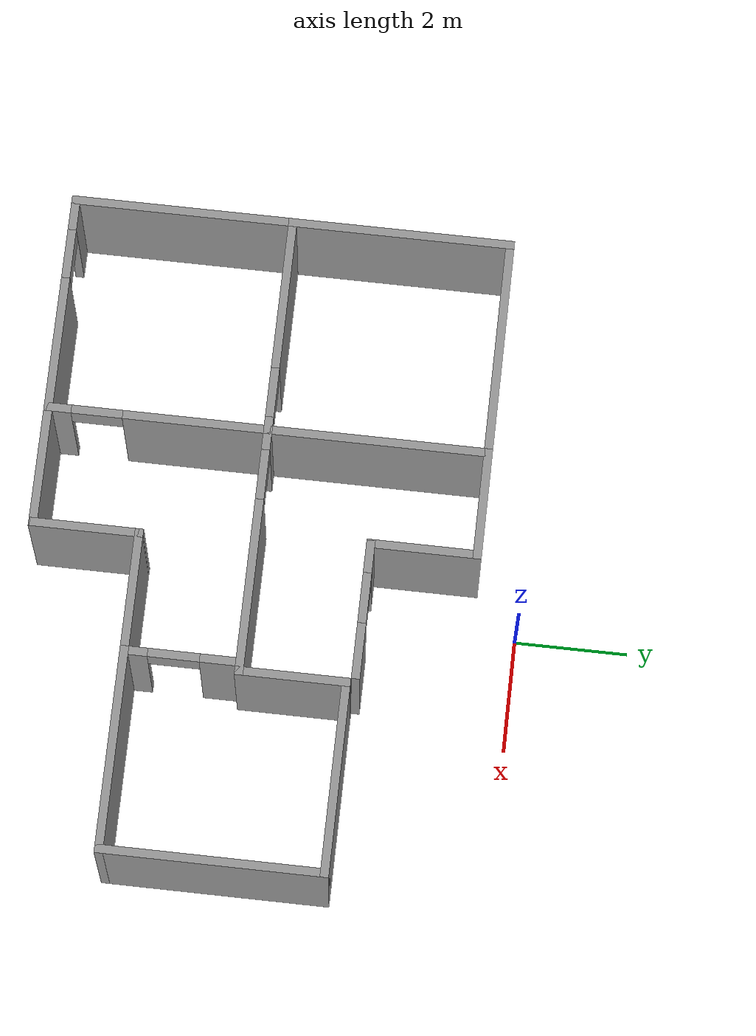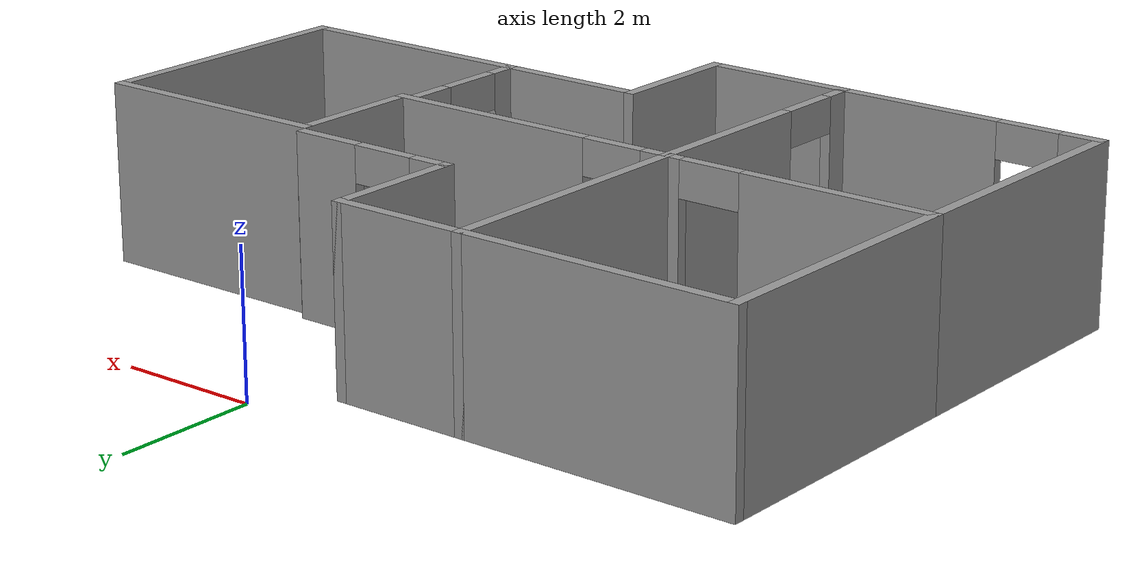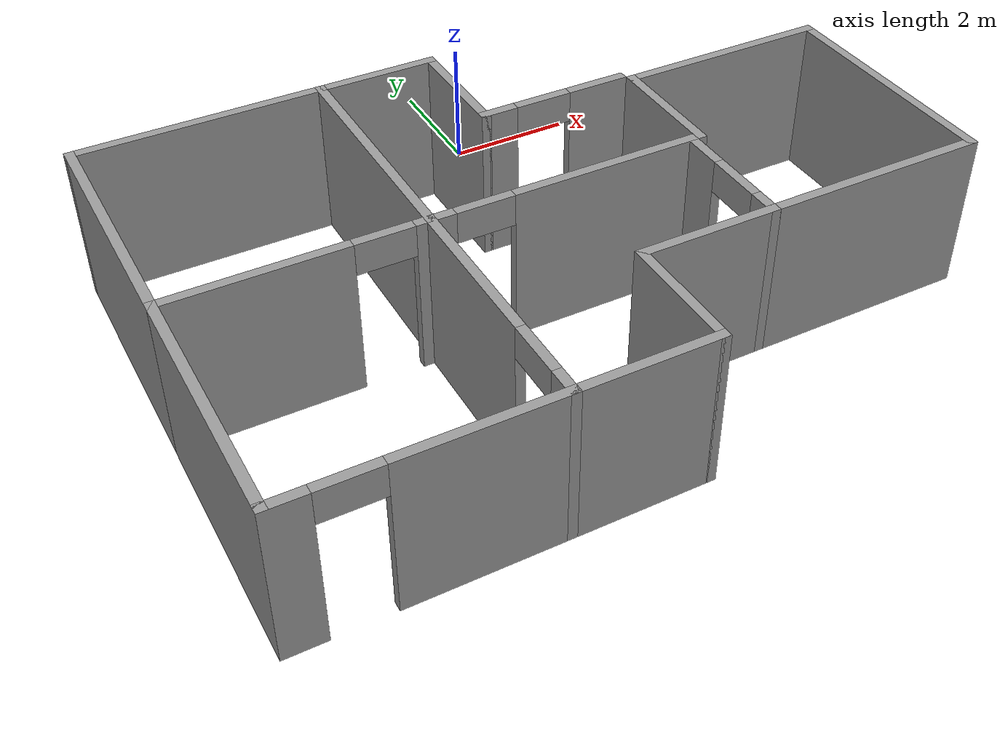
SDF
<?xml version='1.0'?>
<sdf version='1.7'>
  <model name='FirstBuilding_Lab3'>
    <pose>-0.755 -4.2975 0 0 -0 0</pose>
    <link name='Wall_1'>
      <collision name='Wall_1_Collision'>
        <geometry>
          <box>
            <size>4 0.15 2.5</size>
          </box>
        </geometry>
        <pose>0 0 1.25 0 -0 0</pose>
      </collision>
      <visual name='Wall_1_Visual'>
        <pose>0 0 1.25 0 -0 0</pose>
        <geometry>
          <box>
            <size>4 0.15 2.5</size>
          </box>
        </geometry>
        <material>
          <script>
            <uri>file://media/materials/scripts/gazebo.material</uri>
            <name>Gazebo/Grey</name>
          </script>
          <ambient>1 1 1 1</ambient>
        </material>
        <meta>
          <layer>0</layer>
        </meta>
      </visual>
      <pose>-5.775 1.5525 0 0 -0 -1.5708</pose>
    </link>
    <link name='Wall_2'>
      <pose>-3.85 -0.3725 0 0 -0 0</pose>
      <visual name='Wall_2_Visual_0'>
        <pose>-0.606687 0 1.25 0 -0 0</pose>
        <geometry>
          <box>
            <size>2.78662 0.15 2.5</size>
          </box>
        </geometry>
        <material>
          <script>
            <uri>file://media/materials/scripts/gazebo.material</uri>
            <name>Gazebo/Grey</name>
          </script>
          <ambient>1 1 1 1</ambient>
        </material>
        <meta>
          <layer>0</layer>
        </meta>
      </visual>
      <collision name='Wall_2_Collision_0'>
        <geometry>
          <box>
            <size>2.78662 0.15 2.5</size>
          </box>
        </geometry>
        <pose>-0.606687 0 1.25 0 -0 0</pose>
      </collision>
      <visual name='Wall_2_Visual_1'>
        <pose>1.84331 0 1.25 0 -0 0</pose>
        <geometry>
          <box>
            <size>0.313375 0.15 2.5</size>
          </box>
        </geometry>
        <material>
          <script>
            <uri>file://media/materials/scripts/gazebo.material</uri>
            <name>Gazebo/Grey</name>
          </script>
          <ambient>1 1 1 1</ambient>
        </material>
        <meta>
          <layer>0</layer>
        </meta>
      </visual>
      <collision name='Wall_2_Collision_1'>
        <geometry>
          <box>
            <size>0.313375 0.15 2.5</size>
          </box>
        </geometry>
        <pose>1.84331 0 1.25 0 -0 0</pose>
      </collision>
      <visual name='Wall_2_Visual_2'>
        <pose>1.23663 0 2.25 0 -0 0</pose>
        <geometry>
          <box>
            <size>0.9 0.15 0.5</size>
          </box>
        </geometry>
        <material>
          <script>
            <uri>file://media/materials/scripts/gazebo.material</uri>
            <name>Gazebo/Grey</name>
          </script>
          <ambient>1 1 1 1</ambient>
        </material>
        <meta>
          <layer>0</layer>
        </meta>
      </visual>
      <collision name='Wall_2_Collision_2'>
        <geometry>
          <box>
            <size>0.9 0.15 0.5</size>
          </box>
        </geometry>
        <pose>1.23663 0 2.25 0 -0 0</pose>
      </collision>
    </link>
    <link name='Wall_22'>
      <collision name='Wall_22_Collision'>
        <geometry>
          <box>
            <size>2 0.15 2.5</size>
          </box>
        </geometry>
        <pose>0 0 1.25 0 -0 0</pose>
      </collision>
      <visual name='Wall_22_Visual'>
        <pose>0 0 1.25 0 -0 0</pose>
        <geometry>
          <box>
            <size>2 0.15 2.5</size>
          </box>
        </geometry>
        <material>
          <script>
            <uri>file://media/materials/scripts/gazebo.material</uri>
            <name>Gazebo/Grey</name>
          </script>
          <ambient>1 1 1 1</ambient>
        </material>
        <meta>
          <layer>0</layer>
        </meta>
      </visual>
      <pose>-0.075 2.5525 0 0 -0 -1.5708</pose>
    </link>
    <link name='Wall_23'>
      <pose>1.1 1.6275 0 0 -0 0</pose>
      <visual name='Wall_23_Visual_0'>
        <pose>-0.948761 0 1.25 0 -0 0</pose>
        <geometry>
          <box>
            <size>0.602478 0.15 2.5</size>
          </box>
        </geometry>
        <material>
          <script>
            <uri>file://media/materials/scripts/gazebo.material</uri>
            <name>Gazebo/Grey</name>
          </script>
          <ambient>1 1 1 1</ambient>
        </material>
        <meta>
          <layer>0</layer>
        </meta>
      </visual>
      <collision name='Wall_23_Collision_0'>
        <geometry>
          <box>
            <size>0.602478 0.15 2.5</size>
          </box>
        </geometry>
        <pose>-0.948761 0 1.25 0 -0 0</pose>
      </collision>
      <visual name='Wall_23_Visual_1'>
        <pose>0.751239 0 1.25 0 -0 0</pose>
        <geometry>
          <box>
            <size>0.997522 0.15 2.5</size>
          </box>
        </geometry>
        <material>
          <script>
            <uri>file://media/materials/scripts/gazebo.material</uri>
            <name>Gazebo/Grey</name>
          </script>
          <ambient>1 1 1 1</ambient>
        </material>
        <meta>
          <layer>0</layer>
        </meta>
      </visual>
      <collision name='Wall_23_Collision_1'>
        <geometry>
          <box>
            <size>0.997522 0.15 2.5</size>
          </box>
        </geometry>
        <pose>0.751239 0 1.25 0 -0 0</pose>
      </collision>
      <visual name='Wall_23_Visual_2'>
        <pose>-0.197522 0 2.25 0 -0 0</pose>
        <geometry>
          <box>
            <size>0.9 0.15 0.5</size>
          </box>
        </geometry>
        <material>
          <script>
            <uri>file://media/materials/scripts/gazebo.material</uri>
            <name>Gazebo/Grey</name>
          </script>
          <ambient>1 1 1 1</ambient>
        </material>
        <meta>
          <layer>0</layer>
        </meta>
      </visual>
      <collision name='Wall_23_Collision_2'>
        <geometry>
          <box>
            <size>0.9 0.15 0.5</size>
          </box>
        </geometry>
        <pose>-0.197522 0 2.25 0 -0 0</pose>
      </collision>
    </link>
    <link name='Wall_26'>
      <pose>0.25 -0.3725 0 0 -0 0</pose>
      <visual name='Wall_26_Visual_0'>
        <pose>-2.02994 0 1.25 0 -0 0</pose>
        <geometry>
          <box>
            <size>0.440115 0.15 2.5</size>
          </box>
        </geometry>
        <material>
          <script>
            <uri>file://media/materials/scripts/gazebo.material</uri>
            <name>Gazebo/Grey</name>
          </script>
          <ambient>1 1 1 1</ambient>
        </material>
        <meta>
          <layer>0</layer>
        </meta>
      </visual>
      <collision name='Wall_26_Collision_0'>
        <geometry>
          <box>
            <size>0.440115 0.15 2.5</size>
          </box>
        </geometry>
        <pose>-2.02994 0 1.25 0 -0 0</pose>
      </collision>
      <visual name='Wall_26_Visual_1'>
        <pose>0.670057 0 1.25 0 -0 0</pose>
        <geometry>
          <box>
            <size>3.15989 0.15 2.5</size>
          </box>
        </geometry>
        <material>
          <script>
            <uri>file://media/materials/scripts/gazebo.material</uri>
            <name>Gazebo/Grey</name>
          </script>
          <ambient>1 1 1 1</ambient>
        </material>
        <meta>
          <layer>0</layer>
        </meta>
      </visual>
      <collision name='Wall_26_Collision_1'>
        <geometry>
          <box>
            <size>3.15989 0.15 2.5</size>
          </box>
        </geometry>
        <pose>0.670057 0 1.25 0 -0 0</pose>
      </collision>
      <visual name='Wall_26_Visual_2'>
        <pose>-1.35989 0 2.25 0 -0 0</pose>
        <geometry>
          <box>
            <size>0.9 0.15 0.5</size>
          </box>
        </geometry>
        <material>
          <script>
            <uri>file://media/materials/scripts/gazebo.material</uri>
            <name>Gazebo/Grey</name>
          </script>
          <ambient>1 1 1 1</ambient>
        </material>
        <meta>
          <layer>0</layer>
        </meta>
      </visual>
      <collision name='Wall_26_Collision_2'>
        <geometry>
          <box>
            <size>0.9 0.15 0.5</size>
          </box>
        </geometry>
        <pose>-1.35989 0 2.25 0 -0 0</pose>
      </collision>
    </link>
    <link name='Wall_27'>
      <collision name='Wall_27_Collision'>
        <geometry>
          <box>
            <size>2 0.15 2.5</size>
          </box>
        </geometry>
        <pose>0 0 1.25 0 -0 0</pose>
      </collision>
      <visual name='Wall_27_Visual'>
        <pose>0 0 1.25 0 -0 0</pose>
        <geometry>
          <box>
            <size>2 0.15 2.5</size>
          </box>
        </geometry>
        <material>
          <script>
            <uri>file://media/materials/scripts/gazebo.material</uri>
            <name>Gazebo/Grey</name>
          </script>
          <ambient>1 1 1 1</ambient>
        </material>
        <meta>
          <layer>0</layer>
        </meta>
      </visual>
      <pose>2.425 0.5525 0 0 -0 1.5708</pose>
    </link>
    <link name='Wall_29'>
      <collision name='Wall_29_Collision'>
        <geometry>
          <box>
            <size>4 0.15 2.5</size>
          </box>
        </geometry>
        <pose>0 0 1.25 0 -0 0</pose>
      </collision>
      <visual name='Wall_29_Visual'>
        <pose>0 0 1.25 0 -0 0</pose>
        <geometry>
          <box>
            <size>4 0.15 2.5</size>
          </box>
        </geometry>
        <material>
          <script>
            <uri>file://media/materials/scripts/gazebo.material</uri>
            <name>Gazebo/Grey</name>
          </script>
          <ambient>1 1 1 1</ambient>
        </material>
        <meta>
          <layer>0</layer>
        </meta>
      </visual>
      <pose>-5.775 -2.2975 0 0 -0 -1.5708</pose>
    </link>
    <link name='Wall_3'>
      <collision name='Wall_3_Collision'>
        <geometry>
          <box>
            <size>4 0.15 2.5</size>
          </box>
        </geometry>
        <pose>0 0 1.25 0 -0 0</pose>
      </collision>
      <visual name='Wall_3_Visual'>
        <pose>0 0 1.25 0 -0 0</pose>
        <geometry>
          <box>
            <size>4 0.15 2.5</size>
          </box>
        </geometry>
        <material>
          <script>
            <uri>file://media/materials/scripts/gazebo.material</uri>
            <name>Gazebo/Grey</name>
          </script>
          <ambient>1 1 1 1</ambient>
        </material>
        <meta>
          <layer>0</layer>
        </meta>
      </visual>
      <pose>-1.925 1.5525 0 0 -0 1.5708</pose>
    </link>
    <link name='Wall_30'>
      <pose>-3.85 -4.2225 0 0 -0 0</pose>
      <visual name='Wall_30_Visual_0'>
        <pose>-1.68226 0 1.25 0 -0 0</pose>
        <geometry>
          <box>
            <size>0.635479 0.15 2.5</size>
          </box>
        </geometry>
        <material>
          <script>
            <uri>file://media/materials/scripts/gazebo.material</uri>
            <name>Gazebo/Grey</name>
          </script>
          <ambient>1 1 1 1</ambient>
        </material>
        <meta>
          <layer>0</layer>
        </meta>
      </visual>
      <collision name='Wall_30_Collision_0'>
        <geometry>
          <box>
            <size>0.635479 0.15 2.5</size>
          </box>
        </geometry>
        <pose>-1.68226 0 1.25 0 -0 0</pose>
      </collision>
      <visual name='Wall_30_Visual_1'>
        <pose>0.767739 0 1.25 0 -0 0</pose>
        <geometry>
          <box>
            <size>2.46452 0.15 2.5</size>
          </box>
        </geometry>
        <material>
          <script>
            <uri>file://media/materials/scripts/gazebo.material</uri>
            <name>Gazebo/Grey</name>
          </script>
          <ambient>1 1 1 1</ambient>
        </material>
        <meta>
          <layer>0</layer>
        </meta>
      </visual>
      <collision name='Wall_30_Collision_1'>
        <geometry>
          <box>
            <size>2.46452 0.15 2.5</size>
          </box>
        </geometry>
        <pose>0.767739 0 1.25 0 -0 0</pose>
      </collision>
      <visual name='Wall_30_Visual_2'>
        <pose>-0.914521 0 2.25 0 -0 0</pose>
        <geometry>
          <box>
            <size>0.9 0.15 0.5</size>
          </box>
        </geometry>
        <material>
          <script>
            <uri>file://media/materials/scripts/gazebo.material</uri>
            <name>Gazebo/Grey</name>
          </script>
          <ambient>1 1 1 1</ambient>
        </material>
        <meta>
          <layer>0</layer>
        </meta>
      </visual>
      <collision name='Wall_30_Collision_2'>
        <geometry>
          <box>
            <size>0.9 0.15 0.5</size>
          </box>
        </geometry>
        <pose>-0.914521 0 2.25 0 -0 0</pose>
      </collision>
    </link>
    <link name='Wall_31'>
      <pose>-1.925 -2.2975 0 0 -0 1.5708</pose>
      <visual name='Wall_31_Visual_0'>
        <pose>-1.76053 0 1.25 0 -0 0</pose>
        <geometry>
          <box>
            <size>0.478948 0.15 2.5</size>
          </box>
        </geometry>
        <material>
          <script>
            <uri>file://media/materials/scripts/gazebo.material</uri>
            <name>Gazebo/Grey</name>
          </script>
          <ambient>1 1 1 1</ambient>
        </material>
        <meta>
          <layer>0</layer>
        </meta>
      </visual>
      <collision name='Wall_31_Collision_0'>
        <geometry>
          <box>
            <size>0.478948 0.15 2.5</size>
          </box>
        </geometry>
        <pose>-1.76053 0 1.25 0 -0 0</pose>
      </collision>
      <visual name='Wall_31_Visual_1'>
        <pose>0.689474 0 1.25 0 -0 0</pose>
        <geometry>
          <box>
            <size>2.62105 0.15 2.5</size>
          </box>
        </geometry>
        <material>
          <script>
            <uri>file://media/materials/scripts/gazebo.material</uri>
            <name>Gazebo/Grey</name>
          </script>
          <ambient>1 1 1 1</ambient>
        </material>
        <meta>
          <layer>0</layer>
        </meta>
      </visual>
      <collision name='Wall_31_Collision_1'>
        <geometry>
          <box>
            <size>2.62105 0.15 2.5</size>
          </box>
        </geometry>
        <pose>0.689474 0 1.25 0 -0 0</pose>
      </collision>
      <visual name='Wall_31_Visual_2'>
        <pose>-1.07105 0 2.25 0 -0 0</pose>
        <geometry>
          <box>
            <size>0.9 0.15 0.5</size>
          </box>
        </geometry>
        <material>
          <script>
            <uri>file://media/materials/scripts/gazebo.material</uri>
            <name>Gazebo/Grey</name>
          </script>
          <ambient>1 1 1 1</ambient>
        </material>
        <meta>
          <layer>0</layer>
        </meta>
      </visual>
      <collision name='Wall_31_Collision_2'>
        <geometry>
          <box>
            <size>0.9 0.15 0.5</size>
          </box>
        </geometry>
        <pose>-1.07105 0 2.25 0 -0 0</pose>
      </collision>
    </link>
    <link name='Wall_33'>
      <collision name='Wall_33_Collision'>
        <geometry>
          <box>
            <size>2.25 0.15 2.5</size>
          </box>
        </geometry>
        <pose>0 0 1.25 0 -0 0</pose>
      </collision>
      <visual name='Wall_33_Visual'>
        <pose>0 0 1.25 0 -0 0</pose>
        <geometry>
          <box>
            <size>2.25 0.15 2.5</size>
          </box>
        </geometry>
        <material>
          <script>
            <uri>file://media/materials/scripts/gazebo.material</uri>
            <name>Gazebo/Grey</name>
          </script>
          <ambient>1 1 1 1</ambient>
        </material>
        <meta>
          <layer>0</layer>
        </meta>
      </visual>
      <pose>-0.875 -4.2225 0 0 -0 0</pose>
    </link>
    <link name='Wall_34'>
      <collision name='Wall_34_Collision'>
        <geometry>
          <box>
            <size>2 0.15 2.5</size>
          </box>
        </geometry>
        <pose>0 0 1.25 0 -0 0</pose>
      </collision>
      <visual name='Wall_34_Visual'>
        <pose>0 0 1.25 0 -0 0</pose>
        <geometry>
          <box>
            <size>2 0.15 2.5</size>
          </box>
        </geometry>
        <material>
          <script>
            <uri>file://media/materials/scripts/gazebo.material</uri>
            <name>Gazebo/Grey</name>
          </script>
          <ambient>1 1 1 1</ambient>
        </material>
        <meta>
          <layer>0</layer>
        </meta>
      </visual>
      <pose>0.175 -3.2975 0 0 -0 1.5708</pose>
    </link>
    <link name='Wall_35'>
      <collision name='Wall_35_Collision'>
        <geometry>
          <box>
            <size>2.25 0.15 2.5</size>
          </box>
        </geometry>
        <pose>0 0 1.25 0 -0 0</pose>
      </collision>
      <visual name='Wall_35_Visual'>
        <pose>0 0 1.25 0 -0 0</pose>
        <geometry>
          <box>
            <size>2.25 0.15 2.5</size>
          </box>
        </geometry>
        <material>
          <script>
            <uri>file://media/materials/scripts/gazebo.material</uri>
            <name>Gazebo/Grey</name>
          </script>
          <ambient>1 1 1 1</ambient>
        </material>
        <meta>
          <layer>0</layer>
        </meta>
      </visual>
      <pose>1.225 -2.3725 0 0 -0 0</pose>
    </link>
    <link name='Wall_36'>
      <pose>2.275 -1.4475 0 0 -0 1.5708</pose>
      <visual name='Wall_36_Visual_0'>
        <pose>-0.760302 0 1.25 0 -0 0</pose>
        <geometry>
          <box>
            <size>0.479397 0.15 2.5</size>
          </box>
        </geometry>
        <material>
          <script>
            <uri>file://media/materials/scripts/gazebo.material</uri>
            <name>Gazebo/Grey</name>
          </script>
          <ambient>1 1 1 1</ambient>
        </material>
        <meta>
          <layer>0</layer>
        </meta>
      </visual>
      <collision name='Wall_36_Collision_0'>
        <geometry>
          <box>
            <size>0.479397 0.15 2.5</size>
          </box>
        </geometry>
        <pose>-0.760302 0 1.25 0 -0 0</pose>
      </collision>
      <visual name='Wall_36_Visual_1'>
        <pose>0.689698 0 1.25 0 -0 0</pose>
        <geometry>
          <box>
            <size>0.620603 0.15 2.5</size>
          </box>
        </geometry>
        <material>
          <script>
            <uri>file://media/materials/scripts/gazebo.material</uri>
            <name>Gazebo/Grey</name>
          </script>
          <ambient>1 1 1 1</ambient>
        </material>
        <meta>
          <layer>0</layer>
        </meta>
      </visual>
      <collision name='Wall_36_Collision_1'>
        <geometry>
          <box>
            <size>0.620603 0.15 2.5</size>
          </box>
        </geometry>
        <pose>0.689698 0 1.25 0 -0 0</pose>
      </collision>
      <visual name='Wall_36_Visual_2'>
        <pose>-0.070603 0 2.25 0 -0 0</pose>
        <geometry>
          <box>
            <size>0.9 0.15 0.5</size>
          </box>
        </geometry>
        <material>
          <script>
            <uri>file://media/materials/scripts/gazebo.material</uri>
            <name>Gazebo/Grey</name>
          </script>
          <ambient>1 1 1 1</ambient>
        </material>
        <meta>
          <layer>0</layer>
        </meta>
      </visual>
      <collision name='Wall_36_Collision_2'>
        <geometry>
          <box>
            <size>0.9 0.15 0.5</size>
          </box>
        </geometry>
        <pose>-0.070603 0 2.25 0 -0 0</pose>
      </collision>
    </link>
    <link name='Wall_38'>
      <collision name='Wall_38_Collision'>
        <geometry>
          <box>
            <size>3.5 0.15 2.5</size>
          </box>
        </geometry>
        <pose>0 0 1.25 0 -0 0</pose>
      </collision>
      <visual name='Wall_38_Visual'>
        <pose>0 0 1.25 0 -0 0</pose>
        <geometry>
          <box>
            <size>3.5 0.15 2.5</size>
          </box>
        </geometry>
        <material>
          <script>
            <uri>file://media/materials/scripts/gazebo.material</uri>
            <name>Gazebo/Grey</name>
          </script>
          <ambient>1 1 1 1</ambient>
        </material>
        <meta>
          <layer>0</layer>
        </meta>
      </visual>
      <pose>4.1 1.4775 0 0 -0 0</pose>
    </link>
    <link name='Wall_39'>
      <collision name='Wall_39_Collision'>
        <geometry>
          <box>
            <size>4 0.15 2.5</size>
          </box>
        </geometry>
        <pose>0 0 1.25 0 -0 0</pose>
      </collision>
      <visual name='Wall_39_Visual'>
        <pose>0 0 1.25 0 -0 0</pose>
        <geometry>
          <box>
            <size>4 0.15 2.5</size>
          </box>
        </geometry>
        <material>
          <script>
            <uri>file://media/materials/scripts/gazebo.material</uri>
            <name>Gazebo/Grey</name>
          </script>
          <ambient>1 1 1 1</ambient>
        </material>
        <meta>
          <layer>0</layer>
        </meta>
      </visual>
      <pose>5.775 -0.4475 0 0 -0 -1.5708</pose>
    </link>
    <link name='Wall_4'>
      <collision name='Wall_4_Collision'>
        <geometry>
          <box>
            <size>4 0.15 2.5</size>
          </box>
        </geometry>
        <pose>0 0 1.25 0 -0 0</pose>
      </collision>
      <visual name='Wall_4_Visual'>
        <pose>0 0 1.25 0 -0 0</pose>
        <geometry>
          <box>
            <size>4 0.15 2.5</size>
          </box>
        </geometry>
        <material>
          <script>
            <uri>file://media/materials/scripts/gazebo.material</uri>
            <name>Gazebo/Grey</name>
          </script>
          <ambient>1 1 1 1</ambient>
        </material>
        <meta>
          <layer>0</layer>
        </meta>
      </visual>
      <pose>-3.85 3.4775 0 0 -0 3.14159</pose>
    </link>
    <link name='Wall_40'>
      <collision name='Wall_40_Collision'>
        <geometry>
          <box>
            <size>3.65 0.15 2.5</size>
          </box>
        </geometry>
        <pose>0 0 1.25 0 -0 0</pose>
      </collision>
      <visual name='Wall_40_Visual'>
        <pose>0 0 1.25 0 -0 0</pose>
        <geometry>
          <box>
            <size>3.65 0.15 2.5</size>
          </box>
        </geometry>
        <material>
          <script>
            <uri>file://media/materials/scripts/gazebo.material</uri>
            <name>Gazebo/Grey</name>
          </script>
          <ambient>1 1 1 1</ambient>
        </material>
        <meta>
          <layer>0</layer>
        </meta>
      </visual>
      <pose>4.025 -2.3725 0 0 -0 3.14159</pose>
    </link>
    <link name='Wall_7'>
      <collision name='Wall_7_Collision'>
        <geometry>
          <box>
            <size>2 0.15 2.5</size>
          </box>
        </geometry>
        <pose>0 0 1.25 0 -0 0</pose>
      </collision>
      <visual name='Wall_7_Visual'>
        <pose>0 0 1.25 0 -0 0</pose>
        <geometry>
          <box>
            <size>2 0.15 2.5</size>
          </box>
        </geometry>
        <material>
          <script>
            <uri>file://media/materials/scripts/gazebo.material</uri>
            <name>Gazebo/Grey</name>
          </script>
          <ambient>1 1 1 1</ambient>
        </material>
        <meta>
          <layer>0</layer>
        </meta>
      </visual>
      <pose>-1 3.4775 0 0 -0 0</pose>
    </link>
    <static>1</static>
  </model>
</sdf>
